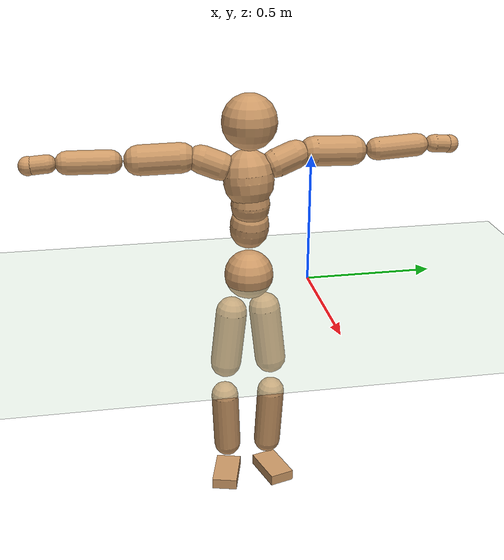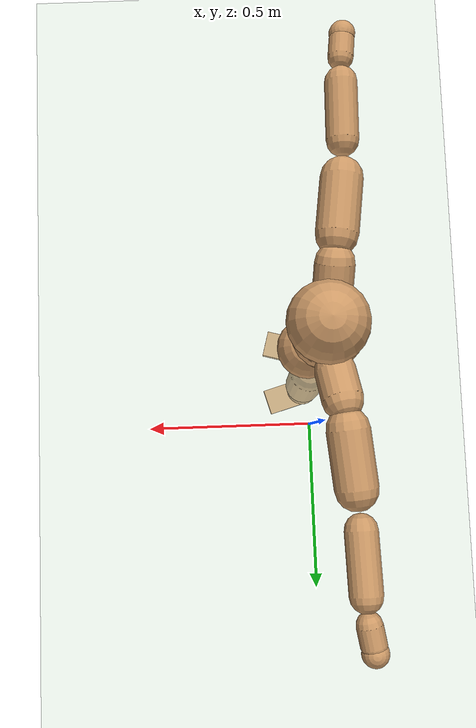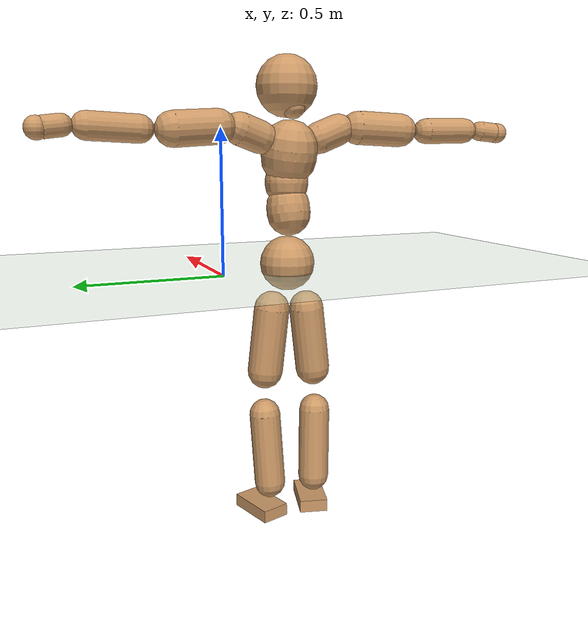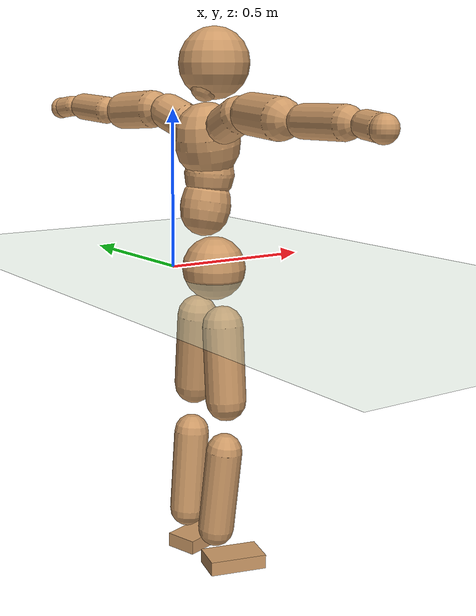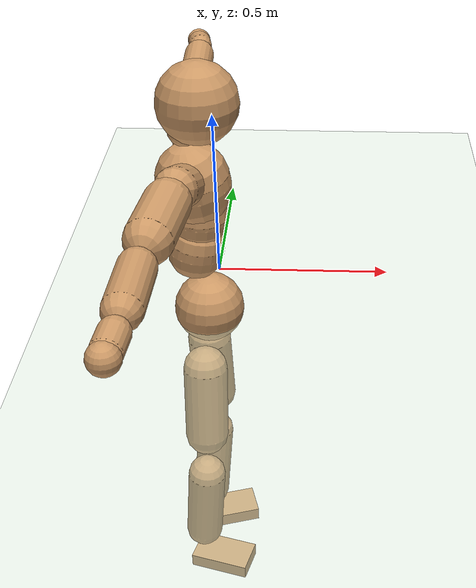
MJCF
<mujoco model="humanoid">
  <compiler coordinate="local"/>
  <default>
    <joint damping="0.0" armature="0.01" stiffness="0.0" limited="true"/>
    <geom conaffinity="1" condim="3" contype="7" margin="0.001" rgba="0.8 0.6 .4 1"/>
  </default>
  <asset>
    <texture type="skybox" builtin="gradient" rgb1=".4 .5 .6" rgb2="0 0 0" width="100" height="100"/>
    <texture builtin="flat" height="1278" mark="cross" markrgb="1 1 1" name="texgeom" random="0.01" rgb1="0.8 0.6 0.4" rgb2="0.8 0.6 0.4" type="cube" width="127"/>
    <texture builtin="checker" height="100" name="texplane" rgb1="0 0 0" rgb2="0.8 0.8 0.8" type="2d" width="100"/>
    <material name="MatPlane" reflectance="0.5" shininess="1" specular="1" texrepeat="60 60" texture="texplane"/>
    <material name="geom" texture="texgeom" texuniform="true"/>
  </asset>
  <worldbody>
    <light cutoff="100" diffuse="1 1 1" dir="-0 0 -1.3" directional="true" exponent="1" pos="0 0 1.3" specular=".1 .1 .1"/>
    <geom conaffinity="1" condim="3" name="floor" pos="0 0 0" rgba="0.8 0.9 0.8 1" size="100 100 .2" type="plane" material="MatPlane"/>
    <body name="Pelvis" pos="-0.0032 -0.2358 0.0324">
      <freejoint name="Pelvis"/>
      <geom type="sphere" contype="1" conaffinity="1" density="500" size="0.0965" pos="0.0000 0.0000 0.0000" name="Pelvis"/>
      <body name="L_Hip" pos="-0.0166 0.0579 -0.0811">
        <joint name="L_Hip_x" type="hinge" pos="0 0 0" axis="1 0 0" stiffness="800" damping="80" armature="0.02" range="-180.0000 180.0000"/>
        <joint name="L_Hip_y" type="hinge" pos="0 0 0" axis="0 1 0" stiffness="800" damping="80" armature="0.02" range="-180.0000 180.0000"/>
        <joint name="L_Hip_z" type="hinge" pos="0 0 0" axis="0 0 1" stiffness="800" damping="80" armature="0.02" range="-180.0000 180.0000"/>
        <geom type="capsule" contype="1" conaffinity="1" density="500" fromto="0.0015 0.0083 -0.0762 0.0058 0.0334 -0.3047" size="0.0624" name="L_Hip"/>
        <body name="L_Knee" pos="0.0073 0.0417 -0.3808">
          <joint name="L_Knee_x" type="hinge" pos="0 0 0" axis="1 0 0" stiffness="800" damping="80" armature="0.02" range="-180.0000 180.0000"/>
          <joint name="L_Knee_y" type="hinge" pos="0 0 0" axis="0 1 0" stiffness="800" damping="80" armature="0.02" range="-180.0000 180.0000"/>
          <joint name="L_Knee_z" type="hinge" pos="0 0 0" axis="0 0 1" stiffness="800" damping="80" armature="0.02" range="-180.0000 180.0000"/>
          <geom type="capsule" contype="1" conaffinity="1" density="500" fromto="-0.0076 -0.0031 -0.0851 -0.0303 -0.0123 -0.3403" size="0.0555" name="L_Knee"/>
          <body name="L_Ankle" pos="-0.0378 -0.0154 -0.4253">
            <joint name="L_Ankle_x" type="hinge" pos="0 0 0" axis="1 0 0" stiffness="800" damping="80" armature="0.02" range="-180.0000 180.0000"/>
            <joint name="L_Ankle_y" type="hinge" pos="0 0 0" axis="0 1 0" stiffness="800" damping="80" armature="0.02" range="-180.0000 180.0000"/>
            <joint name="L_Ankle_z" type="hinge" pos="0 0 0" axis="0 0 1" stiffness="800" damping="80" armature="0.02" range="-180.0000 180.0000"/>
            <geom type="box" contype="1" conaffinity="1" density="500" pos="0.0613 0.0179 -0.0296" size="0.0896 0.0505 0.0221" quat="0.9899 0.0000 0.0000 0.1419" name="L_Ankle"/>
            <body name="L_Toe" pos="0.1226 0.0359 -0.0592">
              <joint name="L_Toe_x" type="hinge" pos="0 0 0" axis="1 0 0" stiffness="500" damping="50" armature="0.02" range="-180.0000 180.0000"/>
              <joint name="L_Toe_y" type="hinge" pos="0 0 0" axis="0 1 0" stiffness="500" damping="50" armature="0.02" range="-180.0000 180.0000"/>
              <joint name="L_Toe_z" type="hinge" pos="0 0 0" axis="0 0 1" stiffness="500" damping="50" armature="0.02" range="-180.0000 180.0000"/>
              <geom type="box" contype="1" conaffinity="1" density="500" pos="0.0000 0.0000 0.0284" size="0.0011 0.0025 0.001" quat="0.9891 0.0000 0.0000 0.1471" name="L_Toe"/>
            </body>
          </body>
        </body>
      </body>
      <body name="R_Hip" pos="-0.0121 -0.06 -0.0894">
        <joint name="R_Hip_x" type="hinge" pos="0 0 0" axis="1 0 0" stiffness="800" damping="80" armature="0.02" range="-180.0000 180.0000"/>
        <joint name="R_Hip_y" type="hinge" pos="0 0 0" axis="0 1 0" stiffness="800" damping="80" armature="0.02" range="-180.0000 180.0000"/>
        <joint name="R_Hip_z" type="hinge" pos="0 0 0" axis="0 0 1" stiffness="800" damping="80" armature="0.02" range="-180.0000 180.0000"/>
        <geom type="capsule" contype="1" conaffinity="1" density="500" fromto="-0.0011 -0.0082 -0.0759 -0.0043 -0.0327 -0.3038" size="0.0618" name="R_Hip"/>
        <body name="R_Knee" pos="-0.0053 -0.0408 -0.3797">
          <joint name="R_Knee_x" type="hinge" pos="0 0 0" axis="1 0 0" stiffness="800" damping="80" armature="0.02" range="-180.0000 180.0000"/>
          <joint name="R_Knee_y" type="hinge" pos="0 0 0" axis="0 1 0" stiffness="800" damping="80" armature="0.02" range="-180.0000 180.0000"/>
          <joint name="R_Knee_z" type="hinge" pos="0 0 0" axis="0 0 1" stiffness="800" damping="80" armature="0.02" range="-180.0000 180.0000"/>
          <geom type="capsule" contype="1" conaffinity="1" density="500" fromto="-0.0069 0.0040 -0.0838 -0.0274 0.0158 -0.3351" size="0.0555" name="R_Knee"/>
          <body name="R_Ankle" pos="-0.0343 0.0198 -0.4189">
            <joint name="R_Ankle_x" type="hinge" pos="0 0 0" axis="1 0 0" stiffness="800" damping="80" armature="0.02" range="-180.0000 180.0000"/>
            <joint name="R_Ankle_y" type="hinge" pos="0 0 0" axis="0 1 0" stiffness="800" damping="80" armature="0.02" range="-180.0000 180.0000"/>
            <joint name="R_Ankle_z" type="hinge" pos="0 0 0" axis="0 0 1" stiffness="800" damping="80" armature="0.02" range="-180.0000 180.0000"/>
            <geom type="box" contype="1" conaffinity="1" density="500" pos="0.0649 -0.0174 -0.0308" size="0.0898 0.051 0.0221" quat="0.9914 0.0000 0.0000 -0.1305" name="R_Ankle"/>
            <body name="R_Toe" pos="0.1298 -0.0348 -0.0617">
              <joint name="R_Toe_x" type="hinge" pos="0 0 0" axis="1 0 0" stiffness="500" damping="50" armature="0.02" range="-180.0000 180.0000"/>
              <joint name="R_Toe_y" type="hinge" pos="0 0 0" axis="0 1 0" stiffness="500" damping="50" armature="0.02" range="-180.0000 180.0000"/>
              <joint name="R_Toe_z" type="hinge" pos="0 0 0" axis="0 0 1" stiffness="500" damping="50" armature="0.02" range="-180.0000 180.0000"/>
              <geom type="box" contype="1" conaffinity="1" density="500" pos="0.0000 0.0000 0.0302" size="0.0011 0.0025 0.0011" quat="0.9926 0.0000 0.0000 -0.1216" name="R_Toe"/>
            </body>
          </body>
        </body>
      </body>
      <body name="Torso" pos="-0.0393 0.0044 0.123">
        <joint name="Torso_x" type="hinge" pos="0 0 0" axis="1 0 0" stiffness="1000" damping="100" armature="0.02" range="-180.0000 180.0000"/>
        <joint name="Torso_y" type="hinge" pos="0 0 0" axis="0 1 0" stiffness="1000" damping="100" armature="0.02" range="-180.0000 180.0000"/>
        <joint name="Torso_z" type="hinge" pos="0 0 0" axis="0 0 1" stiffness="1000" damping="100" armature="0.02" range="-180.0000 180.0000"/>
        <geom type="capsule" contype="1" conaffinity="1" density="500" fromto="0.0148 0.0026 0.0804 0.0098 0.0017 0.0536" size="0.075516" name="Torso"/>
        <body name="Spine" pos="0.0246 0.0043 0.134">
          <joint name="Spine_x" type="hinge" pos="0 0 0" axis="1 0 0" stiffness="1000" damping="100" armature="0.02" range="-180.0000 180.0000"/>
          <joint name="Spine_y" type="hinge" pos="0 0 0" axis="0 1 0" stiffness="1000" damping="100" armature="0.02" range="-180.0000 180.0000"/>
          <joint name="Spine_z" type="hinge" pos="0 0 0" axis="0 0 1" stiffness="1000" damping="100" armature="0.02" range="-180.0000 180.0000"/>
          <geom type="capsule" contype="1" conaffinity="1" density="500" fromto="0.0022 -0.0011 0.0327 0.0015 -0.0008 0.0218" size="0.075237" name="Spine"/>
          <body name="Chest" pos="0.0037 -0.0019 0.0545">
            <joint name="Chest_x" type="hinge" pos="0 0 0" axis="1 0 0" stiffness="1000" damping="100" armature="0.02" range="-180.0000 180.0000"/>
            <joint name="Chest_y" type="hinge" pos="0 0 0" axis="0 1 0" stiffness="1000" damping="100" armature="0.02" range="-180.0000 180.0000"/>
            <joint name="Chest_z" type="hinge" pos="0 0 0" axis="0 0 1" stiffness="1000" damping="100" armature="0.02" range="-180.0000 180.0000"/>
            <geom type="capsule" contype="1" conaffinity="1" density="500" fromto="-0.0153 -0.0051 0.0873 -0.0102 -0.0034 0.0582" size="0.097185" name="Chest"/>
            <body name="Neck" pos="-0.037 -0.0149 0.2104">
              <joint name="Neck_x" type="hinge" pos="0 0 0" axis="1 0 0" stiffness="500" damping="50" armature="0.02" range="-180.0000 180.0000"/>
              <joint name="Neck_y" type="hinge" pos="0 0 0" axis="0 1 0" stiffness="500" damping="50" armature="0.02" range="-180.0000 180.0000"/>
              <joint name="Neck_z" type="hinge" pos="0 0 0" axis="0 0 1" stiffness="500" damping="50" armature="0.02" range="-180.0000 180.0000"/>
              <geom type="capsule" contype="1" conaffinity="1" density="500" fromto="0.0091 0.0020 0.0168 0.0366 0.0079 0.0672" size="0.042966" name="Neck"/>
              <body name="Head" pos="0.0457 0.0099 0.084">
                <joint name="Head_x" type="hinge" pos="0 0 0" axis="1 0 0" stiffness="500" damping="50" armature="0.02" range="-180.0000 180.0000"/>
                <joint name="Head_y" type="hinge" pos="0 0 0" axis="0 1 0" stiffness="500" damping="50" armature="0.02" range="-180.0000 180.0000"/>
                <joint name="Head_z" type="hinge" pos="0 0 0" axis="0 0 1" stiffness="500" damping="50" armature="0.02" range="-180.0000 180.0000"/>
                <geom type="sphere" contype="1" conaffinity="1" density="500" size="0.1052" pos="0.0000 0.0000 0.0000" name="Head"/>
              </body>
            </body>
            <body name="L_Thorax" pos="-0.0169 0.0752 0.114">
              <joint name="L_Thorax_x" type="hinge" pos="0 0 0" axis="1 0 0" stiffness="500" damping="50" armature="0.02" range="-180.0000 180.0000"/>
              <joint name="L_Thorax_y" type="hinge" pos="0 0 0" axis="0 1 0" stiffness="500" damping="50" armature="0.02" range="-180.0000 180.0000"/>
              <joint name="L_Thorax_z" type="hinge" pos="0 0 0" axis="0 0 1" stiffness="500" damping="50" armature="0.02" range="-180.0000 180.0000"/>
              <geom type="capsule" contype="1" conaffinity="1" density="500" fromto="-0.0042 0.0259 0.0091 -0.0169 0.1036 0.0365" size="0.0551" name="L_Thorax"/>
              <body name="L_Shoulder" pos="-0.0211 0.1295 0.0456">
                <joint name="L_Shoulder_x" type="hinge" pos="0 0 0" axis="1 0 0" stiffness="500" damping="50" armature="0.02" range="-720.0000 720.0000"/>
                <joint name="L_Shoulder_y" type="hinge" pos="0 0 0" axis="0 1 0" stiffness="500" damping="50" armature="0.02" range="-720.0000 720.0000"/>
                <joint name="L_Shoulder_z" type="hinge" pos="0 0 0" axis="0 0 1" stiffness="500" damping="50" armature="0.02" range="-720.0000 720.0000"/>
                <geom type="capsule" contype="1" conaffinity="1" density="500" fromto="-0.0051 0.0506 -0.0032 -0.0204 0.2026 -0.0126" size="0.0579" name="L_Shoulder"/>
                <body name="L_Elbow" pos="-0.0255 0.2532 -0.0158">
                  <joint name="L_Elbow_x" type="hinge" pos="0 0 0" axis="1 0 0" stiffness="500" damping="50" armature="0.02" range="-720.0000 720.0000"/>
                  <joint name="L_Elbow_y" type="hinge" pos="0 0 0" axis="0 1 0" stiffness="500" damping="50" armature="0.02" range="-720.0000 720.0000"/>
                  <joint name="L_Elbow_z" type="hinge" pos="0 0 0" axis="0 0 1" stiffness="500" damping="50" armature="0.02" range="-720.0000 720.0000"/>
                  <geom type="capsule" contype="1" conaffinity="1" density="500" fromto="-0.0012 0.0533 0.0026 -0.0047 0.2134 0.0104" size="0.0443" name="L_Elbow"/>
                  <body name="L_Wrist" pos="-0.0058 0.2667 0.013">
                    <joint name="L_Wrist_x" type="hinge" pos="0 0 0" axis="1 0 0" stiffness="300" damping="30" armature="0.02" range="-180.0000 180.0000"/>
                    <joint name="L_Wrist_y" type="hinge" pos="0 0 0" axis="0 1 0" stiffness="300" damping="30" armature="0.02" range="-180.0000 180.0000"/>
                    <joint name="L_Wrist_z" type="hinge" pos="0 0 0" axis="0 0 1" stiffness="300" damping="30" armature="0.02" range="-180.0000 180.0000"/>
                    <geom type="capsule" contype="1" conaffinity="1" density="500" fromto="-0.0031 0.0175 -0.0022 -0.0125 0.0701 -0.0086" size="0.0346" name="L_Wrist"/>
                    <body name="L_Hand" pos="-0.0156 0.0876 -0.0108">
                      <joint name="L_Hand_x" type="hinge" pos="0 0 0" axis="1 0 0" stiffness="300" damping="30" armature="0.02" range="-180.0000 180.0000"/>
                      <joint name="L_Hand_y" type="hinge" pos="0 0 0" axis="0 1 0" stiffness="300" damping="30" armature="0.02" range="-180.0000 180.0000"/>
                      <joint name="L_Hand_z" type="hinge" pos="0 0 0" axis="0 0 1" stiffness="300" damping="30" armature="0.02" range="-180.0000 180.0000"/>
                      <geom type="sphere" contype="1" conaffinity="1" density="500" size="0.0360" pos="0.0000 0.0000 0.0000" name="L_Hand"/>
                    </body>
                  </body>
                </body>
              </body>
            </body>
            <body name="R_Thorax" pos="-0.0227 -0.0859 0.1123">
              <joint name="R_Thorax_x" type="hinge" pos="0 0 0" axis="1 0 0" stiffness="500" damping="50" armature="0.02" range="-180.0000 180.0000"/>
              <joint name="R_Thorax_y" type="hinge" pos="0 0 0" axis="0 1 0" stiffness="500" damping="50" armature="0.02" range="-180.0000 180.0000"/>
              <joint name="R_Thorax_z" type="hinge" pos="0 0 0" axis="0 0 1" stiffness="500" damping="50" armature="0.02" range="-180.0000 180.0000"/>
              <geom type="capsule" contype="1" conaffinity="1" density="500" fromto="-0.0020 -0.0235 0.0096 -0.0081 -0.0939 0.0382" size="0.0547" name="R_Thorax"/>
              <body name="R_Shoulder" pos="-0.0101 -0.1174 0.0478">
                <joint name="R_Shoulder_x" type="hinge" pos="0 0 0" axis="1 0 0" stiffness="500" damping="50" armature="0.02" range="-720.0000 720.0000"/>
                <joint name="R_Shoulder_y" type="hinge" pos="0 0 0" axis="0 1 0" stiffness="500" damping="50" armature="0.02" range="-720.0000 720.0000"/>
                <joint name="R_Shoulder_z" type="hinge" pos="0 0 0" axis="0 0 1" stiffness="500" damping="50" armature="0.02" range="-720.0000 720.0000"/>
                <geom type="capsule" contype="1" conaffinity="1" density="500" fromto="-0.0068 -0.0515 -0.0026 -0.0273 -0.2062 -0.0103" size="0.0582" name="R_Shoulder"/>
                <body name="R_Elbow" pos="-0.0342 -0.2577 -0.0129">
                  <joint name="R_Elbow_x" type="hinge" pos="0 0 0" axis="1 0 0" stiffness="500" damping="50" armature="0.02" range="-720.0000 720.0000"/>
                  <joint name="R_Elbow_y" type="hinge" pos="0 0 0" axis="0 1 0" stiffness="500" damping="50" armature="0.02" range="-720.0000 720.0000"/>
                  <joint name="R_Elbow_z" type="hinge" pos="0 0 0" axis="0 0 1" stiffness="500" damping="50" armature="0.02" range="-720.0000 720.0000"/>
                  <geom type="capsule" contype="1" conaffinity="1" density="500" fromto="-0.0010 -0.0533 0.0008 -0.0039 -0.2132 0.0033" size="0.0447" name="R_Elbow"/>
                  <body name="R_Wrist" pos="-0.0049 -0.2664 0.0042">
                    <joint name="R_Wrist_x" type="hinge" pos="0 0 0" axis="1 0 0" stiffness="300" damping="30" armature="0.02" range="-180.0000 180.0000"/>
                    <joint name="R_Wrist_y" type="hinge" pos="0 0 0" axis="0 1 0" stiffness="300" damping="30" armature="0.02" range="-180.0000 180.0000"/>
                    <joint name="R_Wrist_z" type="hinge" pos="0 0 0" axis="0 0 1" stiffness="300" damping="30" armature="0.02" range="-180.0000 180.0000"/>
                    <geom type="capsule" contype="1" conaffinity="1" density="500" fromto="-0.0020 -0.0177 -0.0017 -0.0080 -0.0709 -0.0070" size="0.0349" name="R_Wrist"/>
                    <body name="R_Hand" pos="-0.01 -0.0886 -0.0087">
                      <joint name="R_Hand_x" type="hinge" pos="0 0 0" axis="1 0 0" stiffness="300" damping="30" armature="0.02" range="-180.0000 180.0000"/>
                      <joint name="R_Hand_y" type="hinge" pos="0 0 0" axis="0 1 0" stiffness="300" damping="30" armature="0.02" range="-180.0000 180.0000"/>
                      <joint name="R_Hand_z" type="hinge" pos="0 0 0" axis="0 0 1" stiffness="300" damping="30" armature="0.02" range="-180.0000 180.0000"/>
                      <geom type="sphere" contype="1" conaffinity="1" density="500" size="0.0361" pos="0.0000 0.0000 0.0000" name="R_Hand"/>
                    </body>
                  </body>
                </body>
              </body>
            </body>
          </body>
        </body>
      </body>
    </body>
  </worldbody>
  <actuator>
    <motor name="L_Hip_x" joint="L_Hip_x" gear="500"/>
    <motor name="L_Hip_y" joint="L_Hip_y" gear="500"/>
    <motor name="L_Hip_z" joint="L_Hip_z" gear="500"/>
    <motor name="L_Knee_x" joint="L_Knee_x" gear="500"/>
    <motor name="L_Knee_y" joint="L_Knee_y" gear="500"/>
    <motor name="L_Knee_z" joint="L_Knee_z" gear="500"/>
    <motor name="L_Ankle_x" joint="L_Ankle_x" gear="500"/>
    <motor name="L_Ankle_y" joint="L_Ankle_y" gear="500"/>
    <motor name="L_Ankle_z" joint="L_Ankle_z" gear="500"/>
    <motor name="L_Toe_x" joint="L_Toe_x" gear="500"/>
    <motor name="L_Toe_y" joint="L_Toe_y" gear="500"/>
    <motor name="L_Toe_z" joint="L_Toe_z" gear="500"/>
    <motor name="R_Hip_x" joint="R_Hip_x" gear="500"/>
    <motor name="R_Hip_y" joint="R_Hip_y" gear="500"/>
    <motor name="R_Hip_z" joint="R_Hip_z" gear="500"/>
    <motor name="R_Knee_x" joint="R_Knee_x" gear="500"/>
    <motor name="R_Knee_y" joint="R_Knee_y" gear="500"/>
    <motor name="R_Knee_z" joint="R_Knee_z" gear="500"/>
    <motor name="R_Ankle_x" joint="R_Ankle_x" gear="500"/>
    <motor name="R_Ankle_y" joint="R_Ankle_y" gear="500"/>
    <motor name="R_Ankle_z" joint="R_Ankle_z" gear="500"/>
    <motor name="R_Toe_x" joint="R_Toe_x" gear="500"/>
    <motor name="R_Toe_y" joint="R_Toe_y" gear="500"/>
    <motor name="R_Toe_z" joint="R_Toe_z" gear="500"/>
    <motor name="Torso_x" joint="Torso_x" gear="500"/>
    <motor name="Torso_y" joint="Torso_y" gear="500"/>
    <motor name="Torso_z" joint="Torso_z" gear="500"/>
    <motor name="Spine_x" joint="Spine_x" gear="500"/>
    <motor name="Spine_y" joint="Spine_y" gear="500"/>
    <motor name="Spine_z" joint="Spine_z" gear="500"/>
    <motor name="Chest_x" joint="Chest_x" gear="500"/>
    <motor name="Chest_y" joint="Chest_y" gear="500"/>
    <motor name="Chest_z" joint="Chest_z" gear="500"/>
    <motor name="Neck_x" joint="Neck_x" gear="500"/>
    <motor name="Neck_y" joint="Neck_y" gear="500"/>
    <motor name="Neck_z" joint="Neck_z" gear="500"/>
    <motor name="Head_x" joint="Head_x" gear="500"/>
    <motor name="Head_y" joint="Head_y" gear="500"/>
    <motor name="Head_z" joint="Head_z" gear="500"/>
    <motor name="L_Thorax_x" joint="L_Thorax_x" gear="500"/>
    <motor name="L_Thorax_y" joint="L_Thorax_y" gear="500"/>
    <motor name="L_Thorax_z" joint="L_Thorax_z" gear="500"/>
    <motor name="L_Shoulder_x" joint="L_Shoulder_x" gear="500"/>
    <motor name="L_Shoulder_y" joint="L_Shoulder_y" gear="500"/>
    <motor name="L_Shoulder_z" joint="L_Shoulder_z" gear="500"/>
    <motor name="L_Elbow_x" joint="L_Elbow_x" gear="500"/>
    <motor name="L_Elbow_y" joint="L_Elbow_y" gear="500"/>
    <motor name="L_Elbow_z" joint="L_Elbow_z" gear="500"/>
    <motor name="L_Wrist_x" joint="L_Wrist_x" gear="500"/>
    <motor name="L_Wrist_y" joint="L_Wrist_y" gear="500"/>
    <motor name="L_Wrist_z" joint="L_Wrist_z" gear="500"/>
    <motor name="L_Hand_x" joint="L_Hand_x" gear="500"/>
    <motor name="L_Hand_y" joint="L_Hand_y" gear="500"/>
    <motor name="L_Hand_z" joint="L_Hand_z" gear="500"/>
    <motor name="R_Thorax_x" joint="R_Thorax_x" gear="500"/>
    <motor name="R_Thorax_y" joint="R_Thorax_y" gear="500"/>
    <motor name="R_Thorax_z" joint="R_Thorax_z" gear="500"/>
    <motor name="R_Shoulder_x" joint="R_Shoulder_x" gear="500"/>
    <motor name="R_Shoulder_y" joint="R_Shoulder_y" gear="500"/>
    <motor name="R_Shoulder_z" joint="R_Shoulder_z" gear="500"/>
    <motor name="R_Elbow_x" joint="R_Elbow_x" gear="500"/>
    <motor name="R_Elbow_y" joint="R_Elbow_y" gear="500"/>
    <motor name="R_Elbow_z" joint="R_Elbow_z" gear="500"/>
    <motor name="R_Wrist_x" joint="R_Wrist_x" gear="500"/>
    <motor name="R_Wrist_y" joint="R_Wrist_y" gear="500"/>
    <motor name="R_Wrist_z" joint="R_Wrist_z" gear="500"/>
    <motor name="R_Hand_x" joint="R_Hand_x" gear="500"/>
    <motor name="R_Hand_y" joint="R_Hand_y" gear="500"/>
    <motor name="R_Hand_z" joint="R_Hand_z" gear="500"/>
  </actuator>
  <contact>
    <exclude body1="Torso" body2="Chest"/>
    <exclude body1="Head" body2="Chest"/>
    <exclude body1="R_Knee" body2="R_Toe"/>
    <exclude body1="R_Knee" body2="L_Ankle"/>
    <exclude body1="R_Knee" body2="L_Toe"/>
    <exclude body1="L_Knee" body2="L_Toe"/>
    <exclude body1="L_Knee" body2="R_Ankle"/>
    <exclude body1="L_Knee" body2="R_Toe"/>
    <exclude body1="L_Shoulder" body2="Chest"/>
    <exclude body1="R_Shoulder" body2="Chest"/>
  </contact>
  <sensor/>
  <size njmax="700" nconmax="700"/>
</mujoco>
